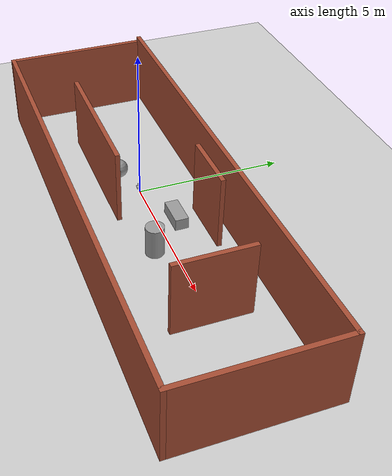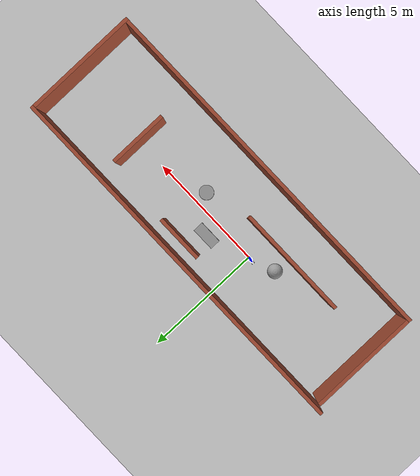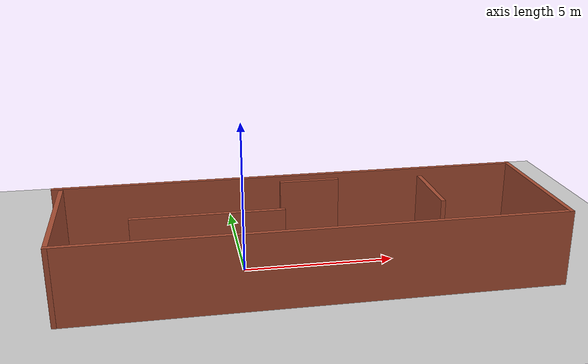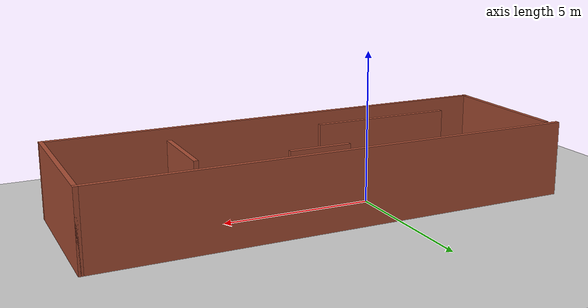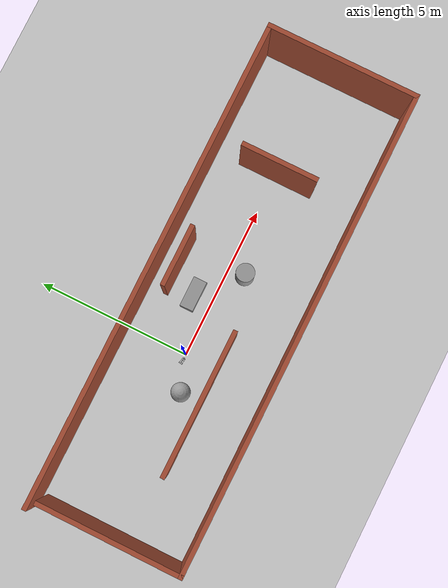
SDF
<sdf version="1.7">
 <world name="default">
  <light name="sun" type="directional">
   <pose>0 0 10 0 -0 0</pose>
   <diffuse>0.8 0.8 0.8 1</diffuse>
   <specular>0.2 0.2 0.2 1</specular>
   <attenuation>
    <range>1000</range>
    <constant>0.9</constant>
    <linear>0.01</linear>
    <quadratic>0.001</quadratic>
   </attenuation>
   <direction>-0.5 0.1 -0.9</direction>
   <spot><inner_angle>0</inner_angle><outer_angle>0</outer_angle><falloff>0</falloff></spot>
  </light>
  <model name="ground_plane">
   <static>1</static>
   <link name="link">
    <collision name="collision">
     <geometry><plane><normal>0 0 1</normal><size>100 100</size></plane></geometry>
     <surface>
      <contact><collide_bitmask>65535</collide_bitmask></contact>
      <friction><ode><mu>100</mu><mu2>50</mu2></ode></friction>
     </surface>
    </collision>
    <visual name="visual">
     <cast_shadows>0</cast_shadows>
     <geometry><plane><normal>0 0 1</normal><size>100 100</size></plane></geometry>
     <material>
      <script><uri>file://media/materials/scripts/gazebo.material</uri><name>Gazebo/Grey</name></script>
     </material>
    </visual>
   </link>
  </model>
  <gravity>0 0 -9.8</gravity>
  <magnetic_field>6e-06 2.3e-05 -4.2e-05</magnetic_field>
  <atmosphere type="adiabatic"/>
  <physics type="ode">
   <max_step_size>0.001</max_step_size>
   <real_time_factor>1</real_time_factor>
   <real_time_update_rate>1000</real_time_update_rate>
  </physics>
  <scene><ambient>0.4 0.4 0.4 1</ambient><background>0.7 0.7 0.7 1</background><shadows>1</shadows></scene>
  <spherical_coordinates>
   <surface_model>EARTH_WGS84</surface_model>
   <latitude_deg>0</latitude_deg>
   <longitude_deg>0</longitude_deg>
   <elevation>0</elevation>
   <heading_deg>0</heading_deg>
  </spherical_coordinates>
  <model name="Assem2">
   <link name="base_link">
    <inertial>
     <pose>0.08594 1e-06 0.011072 0 -0 0</pose>
     <mass>0.633596</mass>
     <inertia>
      <ixx>0.000547787</ixx>
      <ixy>-8.46158e-08</ixy>
      <ixz>-2.68289e-05</ixz>
      <iyy>0.00208896</iyy>
      <iyz>8.6754e-09</iyz>
      <izz>0.00248804</izz>
     </inertia>
    </inertial>
    <collision name="base_link_collision">
     <geometry>
      <mesh><scale>1 1 1</scale><uri>/home/thinhtran/catkin_ws/src/Assem2/meshes/base_link.STL</uri></mesh>
     </geometry>
    </collision>
    <collision name="base_link_fixed_joint_lump__camera_link_collision_1">
     <pose>0.2 0 0.01 0 -0 0</pose>
     <geometry><box><size>0.05 0.05 0.05</size></box></geometry>
    </collision>
    <collision name="base_link_fixed_joint_lump__lidar_Link_collision_2">
     <pose>0.155 0 0.049 0 -0 0</pose>
     <geometry>
      <mesh><scale>1 1 1</scale><uri>/home/thinhtran/catkin_ws/src/Assem2/meshes/lidar_Link.STL</uri></mesh>
     </geometry>
    </collision>
    <visual name="base_link_visual">
     <geometry>
      <mesh><scale>1 1 1</scale><uri>/home/thinhtran/catkin_ws/src/Assem2/meshes/base_link.STL</uri></mesh>
     </geometry>
    </visual>
    <visual name="base_link_fixed_joint_lump__camera_link_visual_1">
     <pose>0.2 0 0.01 0 -0 0</pose>
     <geometry><box><size>0.01 0.01 0.01</size></box></geometry>
    </visual>
    <visual name="base_link_fixed_joint_lump__lidar_Link_visual_2">
     <pose>0.155 0 0.049 0 -0 0</pose>
     <geometry>
      <mesh><scale>1 1 1</scale><uri>/home/thinhtran/catkin_ws/src/Assem2/meshes/lidar_Link.STL</uri></mesh>
     </geometry>
    </visual>
    <sensor name="camera1" type="camera">
     <update_rate>30</update_rate>
     <camera name="head">
      <horizontal_fov>1.39626</horizontal_fov>
      <image><width>800</width><height>800</height><format>R8G8B8</format></image>
      <clip><near>0.02</near><far>300</far></clip>
      <noise><type>gaussian</type><mean>0</mean><stddev>0.007</stddev></noise>
     </camera>
     <plugin name="camera_controller" filename="libgazebo_ros_camera.so">
      <alwaysOn>1</alwaysOn>
      <updateRate>30.0</updateRate>
      <cameraName>camera1</cameraName>
      <imageTopicName>image_raw</imageTopicName>
      <cameraInfoTopicName>camera_info</cameraInfoTopicName>
      <frameName>camera_link</frameName>
      <hackBaseline>0.0</hackBaseline>
      <distortionK1>0.0</distortionK1>
      <distortionK2>0.0</distortionK2>
      <distortionK3>0.0</distortionK3>
      <distortionT1>0.0</distortionT1>
      <distortionT2>0.0</distortionT2>
      <robotNamespace>/</robotNamespace>
     </plugin>
     <pose>0.2 0 0.01 0 -0 0</pose>
    </sensor>
    <sensor name="lidar_sensor" type="ray">
     <visualize>1</visualize>
     <update_rate>20</update_rate>
     <ray>
      <scan>
       <horizontal>
        <samples>720</samples>
        <resolution>1</resolution>
        <min_angle>-3.14</min_angle>
        <max_angle>3.14</max_angle>
       </horizontal>
       <vertical><samples>1</samples><min_angle>0</min_angle><max_angle>0</max_angle></vertical>
      </scan>
      <range><min>0.1</min><max>10</max><resolution>0.01</resolution></range>
     </ray>
     <plugin name="lidar_controller" filename="libgazebo_ros_laser.so">
      <topicName>/lidar/scan</topicName>
      <frameName>lidar_Link</frameName>
      <robotNamespace>/</robotNamespace>
     </plugin>
     <pose>0.155 0 0.049 0 -0 0</pose>
    </sensor>
   </link>
   <joint name="joint_L" type="revolute">
    <pose relative_to="base_link">0 0 0 0 -0 0</pose>
    <parent>base_link</parent>
    <child>L_Link</child>
    <axis>
     <xyz>0 1 0</xyz>
     <limit><effort>5</effort><velocity>10</velocity><lower>-1e+16</lower><upper>1e+16</upper></limit>
     <dynamics>
      <damping>0.01</damping>
      <friction>0.01</friction>
      <spring_reference>0</spring_reference>
      <spring_stiffness>0</spring_stiffness>
     </dynamics>
    </axis>
   </joint>
   <link name="L_Link">
    <pose relative_to="joint_L">0 0 0 0 -0 0</pose>
    <inertial>
     <pose>0 0.054697 0 0 -0 0</pose>
     <mass>0.0194371</mass>
     <inertia>
      <ixx>3.14559e-06</ixx>
      <ixy>1.23753e-22</ixy>
      <ixz>-2.42151e-22</ixz>
      <iyy>5.78705e-06</iyy>
      <iyz>1.24482e-22</iyz>
      <izz>3.14559e-06</izz>
     </inertia>
    </inertial>
    <collision name="L_Link_collision">
     <geometry>
      <mesh><scale>1 1 1</scale><uri>/home/thinhtran/catkin_ws/src/Assem2/meshes/L_Link.STL</uri></mesh>
     </geometry>
    </collision>
    <visual name="L_Link_visual">
     <geometry>
      <mesh><scale>1 1 1</scale><uri>/home/thinhtran/catkin_ws/src/Assem2/meshes/L_Link.STL</uri></mesh>
     </geometry>
    </visual>
   </link>
   <joint name="joint_R" type="revolute">
    <pose relative_to="base_link">0 0 0 0 -0 0</pose>
    <parent>base_link</parent>
    <child>R_Link</child>
    <axis>
     <xyz>0 1 0</xyz>
     <limit><effort>5</effort><velocity>10</velocity><lower>-1e+16</lower><upper>1e+16</upper></limit>
     <dynamics>
      <damping>0.01</damping>
      <friction>0.01</friction>
      <spring_reference>0</spring_reference>
      <spring_stiffness>0</spring_stiffness>
     </dynamics>
    </axis>
   </joint>
   <link name="R_Link">
    <pose relative_to="joint_R">0 0 0 0 -0 0</pose>
    <inertial>
     <pose>0 -0.054697 0 0 -0 0</pose>
     <mass>0.0194371</mass>
     <inertia>
      <ixx>3.14559e-06</ixx>
      <ixy>2.44448e-22</ixy>
      <ixz>3.19959e-22</ixz>
      <iyy>5.78705e-06</iyy>
      <iyz>-2.49259e-23</iyz>
      <izz>3.14559e-06</izz>
     </inertia>
    </inertial>
    <collision name="R_Link_collision">
     <geometry>
      <mesh><scale>1 1 1</scale><uri>/home/thinhtran/catkin_ws/src/Assem2/meshes/R_Link.STL</uri></mesh>
     </geometry>
    </collision>
    <visual name="R_Link_visual">
     <geometry>
      <mesh><scale>1 1 1</scale><uri>/home/thinhtran/catkin_ws/src/Assem2/meshes/R_Link.STL</uri></mesh>
     </geometry>
    </visual>
   </link>
   <joint name="joint_arm1" type="revolute">
    <pose relative_to="base_link">0.02 -0.005 0.04 -1.5708 -1.4936 0</pose>
    <parent>base_link</parent>
    <child>Link_arm1</child>
    <axis>
     <xyz>0 0 -1</xyz>
     <limit><lower>-0.35</lower><upper>0.35</upper><effort>5</effort><velocity>2</velocity></limit>
     <dynamics>
      <damping>0.01</damping>
      <friction>0.01</friction>
      <spring_reference>0</spring_reference>
      <spring_stiffness>0</spring_stiffness>
     </dynamics>
    </axis>
   </joint>
   <link name="Link_arm1">
    <pose relative_to="joint_arm1">0 0 0 0 -0 0</pose>
    <inertial>
     <pose>0.050933 0 0.005 0 -0 0</pose>
     <mass>0.0186367</mass>
     <inertia>
      <ixx>1.09489e-06</ixx>
      <ixy>5.82335e-22</ixy>
      <ixz>-1.55352e-21</ixz>
      <iyy>1.57592e-05</iyy>
      <iyz>-3.49632e-23</iyz>
      <izz>1.53586e-05</izz>
     </inertia>
    </inertial>
    <collision name="Link_arm1_collision">
     <geometry>
      <mesh><scale>1 1 1</scale><uri>/home/thinhtran/catkin_ws/src/Assem2/meshes/Link_arm1.STL</uri></mesh>
     </geometry>
    </collision>
    <visual name="Link_arm1_visual">
     <geometry>
      <mesh><scale>1 1 1</scale><uri>/home/thinhtran/catkin_ws/src/Assem2/meshes/Link_arm1.STL</uri></mesh>
     </geometry>
    </visual>
   </link>
   <joint name="joint_arm2" type="revolute">
    <pose relative_to="Link_arm1">0.085 0 -0.01 0 -0 1.3703</pose>
    <parent>Link_arm1</parent>
    <child>Link-arm2</child>
    <axis>
     <xyz>0 0 -1</xyz>
     <limit><lower>-0.35</lower><upper>0.35</upper><effort>5</effort><velocity>2</velocity></limit>
     <dynamics>
      <damping>0.01</damping>
      <friction>0.01</friction>
      <spring_reference>0</spring_reference>
      <spring_stiffness>0</spring_stiffness>
     </dynamics>
    </axis>
   </joint>
   <link name="Link-arm2">
    <pose relative_to="joint_arm2">0 0 0 0 -0 0</pose>
    <inertial>
     <pose>0.050933 -0 0.015 0 -0 0</pose>
     <mass>0.0186367</mass>
     <inertia>
      <ixx>1.09489e-06</ixx>
      <ixy>-1.72054e-21</ixy>
      <ixz>-1.50611e-21</ixz>
      <iyy>1.57592e-05</iyy>
      <iyz>-4.00577e-23</iyz>
      <izz>1.53586e-05</izz>
     </inertia>
    </inertial>
    <collision name="Link-arm2_collision">
     <geometry>
      <mesh><scale>1 1 1</scale><uri>/home/thinhtran/catkin_ws/src/Assem2/meshes/Link-arm2.STL</uri></mesh>
     </geometry>
    </collision>
    <visual name="Link-arm2_visual">
     <geometry>
      <mesh><scale>1 1 1</scale><uri>/home/thinhtran/catkin_ws/src/Assem2/meshes/Link-arm2.STL</uri></mesh>
     </geometry>
    </visual>
   </link>
   <plugin name="diff_drive_controller" filename="libgazebo_ros_diff_drive.so">
    <robotNamespace>/</robotNamespace>
    <publishWheelTF>1</publishWheelTF>
    <publishTf>1</publishTf>
    <publishWheelJointState>1</publishWheelJointState>
    <alwaysOn>1</alwaysOn>
    <updateRate>100.0</updateRate>
    <leftJoint>joint_L</leftJoint>
    <rightJoint>joint_R</rightJoint>
    <wheelSeparation>0.1</wheelSeparation>
    <wheelDiameter>0.05</wheelDiameter>
    <torque>5</torque>
    <commandTopic>cmd_vel</commandTopic>
    <odometryTopic>odom</odometryTopic>
    <odometryFrame>odom</odometryFrame>
    <robotBaseFrame>base_link</robotBaseFrame>
   </plugin>
   <plugin name="gazebo_ros_control" filename="libgazebo_ros_control.so">
    <robotNamespace>/</robotNamespace>
    <robotSimType>gazebo_ros_control/DefaultRobotHWSim</robotSimType>
    <legacyModeNS>0</legacyModeNS>
    <controlPeriod>0.001</controlPeriod>
   </plugin>
   <frame name="camera_joint" attached_to="base_link"><pose>0.2 0 0.01 0 -0 0</pose></frame>
   <frame name="camera_link" attached_to="camera_joint"/>
   <frame name="joint_lidar" attached_to="base_link"><pose>0.155 0 0.049 0 -0 0</pose></frame>
   <frame name="lidar_Link" attached_to="joint_lidar"/>
   <pose>-0.295852 0.032368 0.024881 -0.000198 -0.032926 -0.175239</pose>
  </model>
  <model name="map">
   <pose>1.89508 -0.380021 0 0 -0 0</pose>
   <link name="Wall_16">
    <collision name="Wall_16_Collision">
     <geometry><box><size>16 0.15 2.5</size></box></geometry>
     <pose>0 0 1.25 0 -0 0</pose>
    </collision>
    <visual name="Wall_16_Visual">
     <pose>0 0 1.25 0 -0 0</pose>
     <geometry><box><size>16 0.15 2.5</size></box></geometry>
     <material>
      <script><uri>file://media/materials/scripts/gazebo.material</uri><name>Gazebo/Bricks</name></script>
      <ambient>1 1 1 1</ambient>
     </material>
     <meta><layer>0</layer></meta>
    </visual>
    <pose>-0 2.425 0 0 -0 0</pose>
   </link>
   <link name="Wall_17">
    <collision name="Wall_17_Collision">
     <geometry><box><size>5 0.15 2.5</size></box></geometry>
     <pose>0 0 1.25 0 -0 0</pose>
    </collision>
    <visual name="Wall_17_Visual">
     <pose>0 0 1.25 0 -0 0</pose>
     <geometry><box><size>5 0.15 2.5</size></box></geometry>
     <material>
      <script><uri>file://media/materials/scripts/gazebo.material</uri><name>Gazebo/Bricks</name></script>
      <ambient>1 1 1 1</ambient>
     </material>
     <meta><layer>0</layer></meta>
    </visual>
    <pose>7.925 -0 0 0 -0 -1.5708</pose>
   </link>
   <link name="Wall_18">
    <collision name="Wall_18_Collision">
     <geometry><box><size>15.75 0.15 2.5</size></box></geometry>
     <pose>0 0 1.25 0 -0 0</pose>
    </collision>
    <visual name="Wall_18_Visual">
     <pose>0 0 1.25 0 -0 0</pose>
     <geometry><box><size>15.75 0.15 2.5</size></box></geometry>
     <material>
      <script><uri>file://media/materials/scripts/gazebo.material</uri><name>Gazebo/Bricks</name></script>
      <ambient>1 1 1 1</ambient>
     </material>
     <meta><layer>0</layer></meta>
    </visual>
    <pose>0.125 -2.425 0 0 -0 3.14159</pose>
   </link>
   <link name="Wall_20">
    <collision name="Wall_20_Collision">
     <geometry><box><size>4.75 0.15 2.5</size></box></geometry>
     <pose>0 0 1.25 0 -0 0</pose>
    </collision>
    <visual name="Wall_20_Visual">
     <pose>0 0 1.25 0 -0 0</pose>
     <geometry><box><size>4.75 0.15 2.5</size></box></geometry>
     <material>
      <script><uri>file://media/materials/scripts/gazebo.material</uri><name>Gazebo/Bricks</name></script>
      <ambient>1 1 1 1</ambient>
     </material>
     <meta><layer>0</layer></meta>
    </visual>
    <pose>-7.675 -0.125 0 0 -0 1.5708</pose>
   </link>
   <link name="Wall_22">
    <collision name="Wall_22_Collision">
     <geometry><box><size>2.5 0.15 2.5</size></box></geometry>
     <pose>0 0 1.25 0 -0 0</pose>
    </collision>
    <visual name="Wall_22_Visual">
     <pose>0 0 1.25 0 -0 0</pose>
     <geometry><box><size>2.5 0.15 2.5</size></box></geometry>
     <material>
      <script><uri>file://media/materials/scripts/gazebo.material</uri><name>Gazebo/Bricks</name></script>
      <ambient>1 1 1 1</ambient>
     </material>
     <meta><layer>0</layer></meta>
    </visual>
    <pose>4.345 0.34 0 0 -0 -1.5708</pose>
   </link>
   <link name="Wall_24">
    <collision name="Wall_24_Collision">
     <geometry><box><size>4.75 0.15 2.5</size></box></geometry>
     <pose>0 0 1.25 0 -0 0</pose>
    </collision>
    <visual name="Wall_24_Visual">
     <pose>0 0 1.25 0 -0 0</pose>
     <geometry><box><size>4.75 0.15 2.5</size></box></geometry>
     <material>
      <script><uri>file://media/materials/scripts/gazebo.material</uri><name>Gazebo/Bricks</name></script>
      <ambient>1 1 1 1</ambient>
     </material>
     <meta><layer>0</layer></meta>
    </visual>
    <pose>-3.075 -0.705 0 0 -0 0</pose>
   </link>
   <link name="Wall_27">
    <collision name="Wall_27_Collision">
     <geometry><box><size>2 0.15 2.5</size></box></geometry>
     <pose>0 0 1.25 0 -0 0</pose>
    </collision>
    <visual name="Wall_27_Visual">
     <pose>0 0 1.25 0 -0 0</pose>
     <geometry><box><size>2 0.15 2.5</size></box></geometry>
     <material>
      <script><uri>file://media/materials/scripts/gazebo.material</uri><name>Gazebo/Bricks</name></script>
      <ambient>1 1 1 1</ambient>
     </material>
     <meta><layer>0</layer></meta>
    </visual>
    <pose>0.52 1.795 0 0 -0 0</pose>
   </link>
   <static>1</static>
  </model>
  <model name="unit_cylinder">
   <pose>3.02258 -0.544617 0.499998 0 -0 0</pose>
   <link name="link">
    <inertial>
     <mass>1</mass>
     <inertia><ixx>0.145833</ixx><ixy>0</ixy><ixz>0</ixz><iyy>0.145833</iyy><iyz>0</iyz><izz>0.125</izz></inertia>
    </inertial>
    <collision name="collision">
     <geometry><cylinder><radius>0.297211</radius><length>1</length></cylinder></geometry>
    </collision>
    <visual name="visual">
     <geometry><cylinder><radius>0.297211</radius><length>1</length></cylinder></geometry>
     <material>
      <script><name>Gazebo/Grey</name><uri>file://media/materials/scripts/gazebo.material</uri></script>
     </material>
    </visual>
   </link>
  </model>
  <model name="unit_box">
   <pose>1.78519 0.62569 0.195539 0 -0 0</pose>
   <link name="link">
    <inertial>
     <mass>1</mass>
     <inertia>
      <ixx>0.166667</ixx>
      <ixy>0</ixy>
      <ixz>0</ixz>
      <iyy>0.166667</iyy>
      <iyz>0</iyz>
      <izz>0.166667</izz>
     </inertia>
    </inertial>
    <collision name="collision"><geometry><box><size>1 0.445937 0.391079</size></box></geometry></collision>
    <visual name="visual">
     <geometry><box><size>1 0.445937 0.391079</size></box></geometry>
     <material>
      <script><name>Gazebo/Grey</name><uri>file://media/materials/scripts/gazebo.material</uri></script>
     </material>
    </visual>
   </link>
  </model>
  <model name="unit_sphere">
   <pose>-1.10568 -0.37846 0.309891 0 -0 0</pose>
   <link name="link">
    <inertial>
     <mass>1</mass>
     <inertia><ixx>0.1</ixx><ixy>0</ixy><ixz>0</ixz><iyy>0.1</iyy><iyz>0</iyz><izz>0.1</izz></inertia>
    </inertial>
    <collision name="collision"><geometry><sphere><radius>0.309891</radius></sphere></geometry></collision>
    <visual name="visual">
     <geometry><sphere><radius>0.309891</radius></sphere></geometry>
     <material>
      <script><name>Gazebo/Grey</name><uri>file://media/materials/scripts/gazebo.material</uri></script>
     </material>
    </visual>
   </link>
  </model>
 </world>
</sdf>
